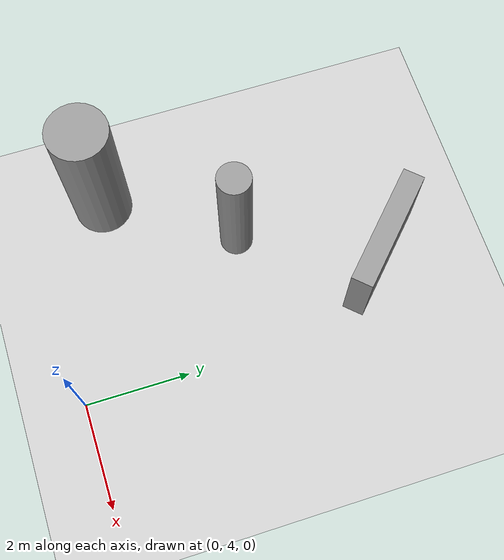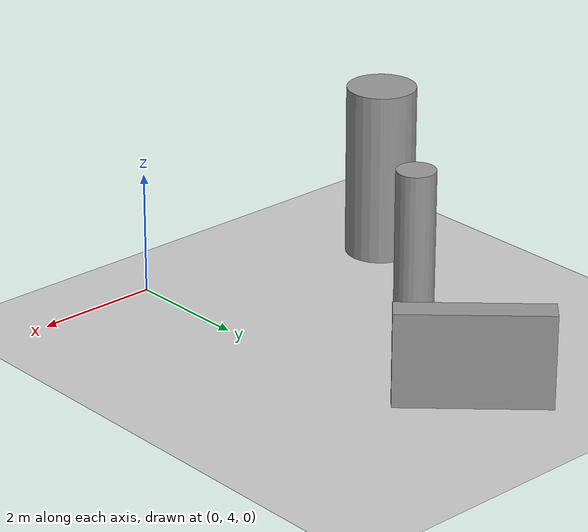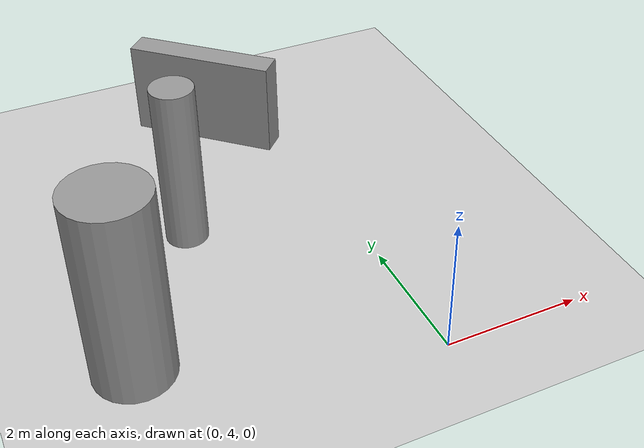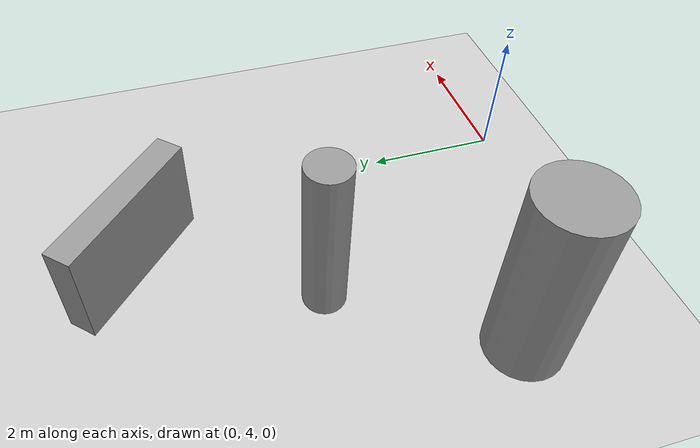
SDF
<sdf version="1.7">
 <world name="default">
  <model name="ground_plane">
   <static>1</static>
   <link name="link">
    <collision name="collision">
     <geometry><plane><normal>0 0 1</normal><size>100 100</size></plane></geometry>
     <surface>
      <contact><collide_bitmask>65535</collide_bitmask></contact>
      <friction><ode><mu>100</mu><mu2>50</mu2></ode></friction>
     </surface>
    </collision>
    <visual name="visual">
     <cast_shadows>0</cast_shadows>
     <geometry><plane><normal>0 0 1</normal><size>100 100</size></plane></geometry>
     <material>
      <script><uri>file://media/materials/scripts/gazebo.material</uri><name>Gazebo/Grey</name></script>
      <ambient>0.45 0.45 0.45 1</ambient>
     </material>
    </visual>
   </link>
  </model>
  <model name="unit_cylinder">
   <pose>-3.86235 5.33849 1.43728 0 -0 -3.5e-05</pose>
   <link name="link">
    <inertial>
     <mass>1</mass>
     <inertia><ixx>0.145833</ixx><ixy>0</ixy><ixz>0</ixz><iyy>0.145833</iyy><iyz>0</iyz><izz>0.125</izz></inertia>
    </inertial>
    <collision name="collision">
     <geometry><cylinder><radius>0.568315</radius><length>2.87458</length></cylinder></geometry>
    </collision>
    <visual name="visual">
     <geometry><cylinder><radius>0.568315</radius><length>2.87458</length></cylinder></geometry>
     <material>
      <script><name>Gazebo/Grey</name><uri>file://media/materials/scripts/gazebo.material</uri></script>
      <ambient>0.15 0.15 0.15 1</ambient>
     </material>
    </visual>
   </link>
  </model>
  <model name="unit_cylinder_0">
   <pose>-2.36856 7.67119 1.28505 0 -0 7.9e-05</pose>
   <link name="link">
    <inertial>
     <mass>1</mass>
     <inertia><ixx>0.145833</ixx><ixy>0</ixy><ixz>0</ixz><iyy>0.145833</iyy><iyz>0</iyz><izz>0.125</izz></inertia>
    </inertial>
    <collision name="collision">
     <geometry><cylinder><radius>0.317936</radius><length>2.57011</length></cylinder></geometry>
    </collision>
    <visual name="visual">
     <geometry><cylinder><radius>0.317936</radius><length>2.57011</length></cylinder></geometry>
     <material>
      <script><name>Gazebo/Grey</name><uri>file://media/materials/scripts/gazebo.material</uri></script>
      <ambient>0.15 0.15 0.15 1</ambient>
     </material>
    </visual>
   </link>
  </model>
  <model name="unit_box">
   <pose>-1.12976 10.1883 0.760671 0 -0 -0.760391</pose>
   <link name="link">
    <inertial>
     <mass>1</mass>
     <inertia>
      <ixx>0.166667</ixx>
      <ixy>0</ixy>
      <ixz>0</ixz>
      <iyy>0.166667</iyy>
      <iyz>0</iyz>
      <izz>0.166667</izz>
     </inertia>
    </inertial>
    <collision name="collision"><geometry><box><size>2.39831 0.420282 1.52135</size></box></geometry></collision>
    <visual name="visual">
     <geometry><box><size>2.39831 0.420282 1.52135</size></box></geometry>
     <material>
      <script><name>Gazebo/Grey</name><uri>file://media/materials/scripts/gazebo.material</uri></script>
      <ambient>0.15 0.15 0.15 1</ambient>
     </material>
    </visual>
   </link>
  </model>
 </world>
</sdf>
